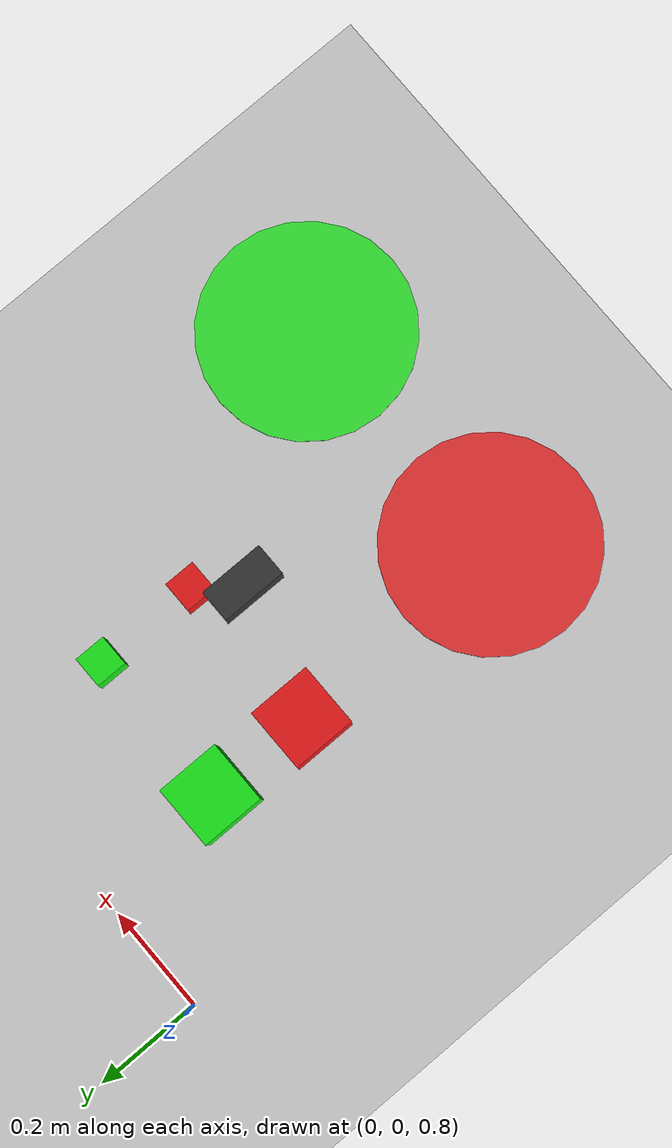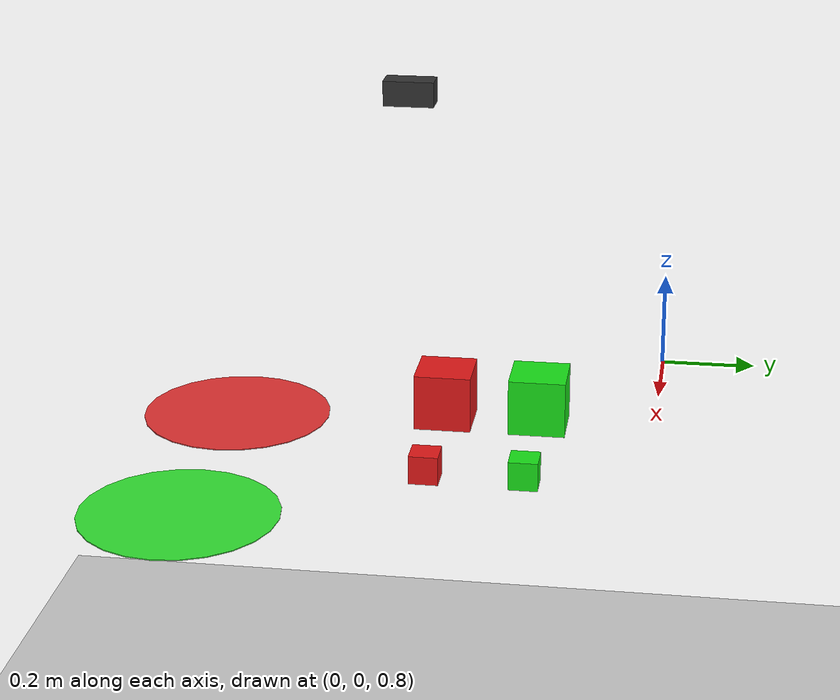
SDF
<sdf version="1.8">
 <world name="pick_place_world">
  <physics name="default_physics" type="ode">
   <max_step_size>0.001</max_step_size>
   <real_time_factor>1.0</real_time_factor>
   <real_time_update_rate>1000</real_time_update_rate>
  </physics>
  <plugin filename="gz-sim-physics-system" name="gz::sim::systems::Physics"/>
  <plugin filename="gz-sim-user-commands-system" name="gz::sim::systems::UserCommands"/>
  <plugin filename="gz-sim-scene-broadcaster-system" name="gz::sim::systems::SceneBroadcaster"/>
  <plugin filename="gz-sim-sensors-system" name="gz::sim::systems::Sensors">
   <render_engine>ogre2</render_engine>
  </plugin>
  <plugin filename="gz-sim-contact-system" name="gz::sim::systems::Contact"/>
  <scene><ambient>0.4 0.4 0.4 1</ambient><background>0.7 0.7 0.8 1</background><shadows>true</shadows></scene>
  <light type="directional" name="sun">
   <pose>0 0 10 0 0 0</pose>
   <diffuse>0.8 0.8 0.8 1</diffuse>
   <specular>0.2 0.2 0.2 1</specular>
   <direction>-0.5 0.1 -0.9</direction>
  </light>
  <model name="ground_plane">
   <static>true</static>
   <link name="link">
    <collision name="collision">
     <geometry><plane><normal>0 0 1</normal><size>10 10</size></plane></geometry>
    </collision>
    <visual name="visual">
     <geometry><plane><normal>0 0 1</normal><size>10 10</size></plane></geometry>
     <material><ambient>0.8 0.8 0.8 1</ambient><diffuse>0.8 0.8 0.8 1</diffuse></material>
    </visual>
   </link>
  </model>
  <include>
   <uri>model://big_green_cube</uri>
   <name>big_green_cube</name>
   <pose>0.25 -0.25 0.80 0 0 0</pose>
  </include>
  <include><uri>model://green_cube</uri><name>green_cube</name><pose>0.55 -0.25 0.77 0 0 0</pose></include>
  <include><uri>model://big_red_cube</uri><name>big_red_cube</name><pose>0.25 -0.45 0.80 0 0 0</pose></include>
  <include><uri>model://red_cube</uri><name>red_cube</name><pose>0.55 -0.45 0.77 0 0 0</pose></include>
  <model name="red_place_marker">
   <static>true</static>
   <pose>0.275 -0.90 0.741 0 0 0</pose>
   <link name="marker_link">
    <visual name="visual">
     <geometry><cylinder><radius>0.20</radius><length>0.002</length></cylinder></geometry>
     <material>
      <ambient>0.9 0.2 0.2 1</ambient>
      <diffuse>0.9 0.2 0.2 1</diffuse>
      <specular>0.3 0.1 0.1 1</specular>
     </material>
    </visual>
   </link>
  </model>
  <model name="green_place_marker">
   <static>true</static>
   <pose>0.775 -0.90 0.741 0 0 0</pose>
   <link name="marker_link">
    <visual name="visual">
     <geometry><cylinder><radius>0.20</radius><length>0.002</length></cylinder></geometry>
     <material>
      <ambient>0.2 0.9 0.2 1</ambient>
      <diffuse>0.2 0.9 0.2 1</diffuse>
      <specular>0.1 0.3 0.1 1</specular>
     </material>
    </visual>
   </link>
  </model>
  <model name="overhead_camera">
   <static>true</static>
   <pose>0.4 -0.5 1.5 0 1.5708 0</pose>
   <link name="camera_link">
    <visual name="camera_visual">
     <geometry><box><size>0.05 0.1 0.05</size></box></geometry>
     <material><ambient>0.1 0.1 0.1 1</ambient><diffuse>0.2 0.2 0.2 1</diffuse></material>
    </visual>
    <sensor name="rgbd_camera" type="rgbd_camera">
     <camera>
      <horizontal_fov>1.047</horizontal_fov>
      <image><width>640</width><height>480</height><format>R8G8B8</format></image>
      <clip><near>0.1</near><far>10.0</far></clip>
      <depth_camera><clip><near>0.1</near><far>10.0</far></clip></depth_camera>
     </camera>
     <always_on>1</always_on>
     <update_rate>10</update_rate>
     <visualize>true</visualize>
     <topic>camera</topic>
    </sensor>
   </link>
  </model>
 </world>
</sdf>

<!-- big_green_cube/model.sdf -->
<sdf version="1.8">
  <model name="big_green_cube">
    <static>false</static>
    <link name="link">
      <inertial>
        <!-- 12cm cube, 1.6kg (8x volume = 8x mass) -->
        <mass>1.6</mass>
        <inertia>
          <!-- I = (1/6) * m * s^2 for a cube = (1/6) * 1.6 * 0.12^2 = 0.00384 -->
          <ixx>0.00384</ixx>
          <iyy>0.00384</iyy>
          <izz>0.00384</izz>
          <ixy>0</ixy>
          <ixz>0</ixz>
          <iyz>0</iyz>
        </inertia>
      </inertial>
      <collision name="collision">
        <geometry>
          <box>
            <!-- 12cm cube - double the size of small cube -->
            <size>0.12 0.12 0.12</size>
          </box>
        </geometry>
        <surface>
          <friction>
            <ode>
              <mu>1.5</mu>
              <mu2>1.5</mu2>
            </ode>
          </friction>
          <contact>
            <ode>
              <kp>1e6</kp>
              <kd>100</kd>
              <max_vel>0.1</max_vel>
              <min_depth>0.001</min_depth>
            </ode>
          </contact>
        </surface>
      </collision>
      <visual name="visual">
        <geometry>
          <box>
            <size>0.12 0.12 0.12</size>
          </box>
        </geometry>
        <material>
          <ambient>0.1 0.8 0.1 1</ambient>
          <diffuse>0.1 0.9 0.1 1</diffuse>
          <specular>0.2 0.2 0.2 1</specular>
        </material>
      </visual>
    </link>
  </model>
</sdf>

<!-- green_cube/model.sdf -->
<sdf version="1.8">
  <model name="green_cube">
    <static>false</static>
    <link name="link">
      <inertial>
        <!-- 6cm cube, 0.2kg - heavier for better physics -->
        <mass>0.2</mass>
        <inertia>
          <!-- I = (1/6) * m * s^2 for a cube -->
          <ixx>0.00012</ixx>
          <iyy>0.00012</iyy>
          <izz>0.00012</izz>
          <ixy>0</ixy>
          <ixz>0</ixz>
          <iyz>0</iyz>
        </inertia>
      </inertial>
      <collision name="collision">
        <geometry>
          <box>
            <!-- 6cm cube - easier to grip with Robotiq 85 -->
            <size>0.06 0.06 0.06</size>
          </box>
        </geometry>
        <surface>
          <friction>
            <ode>
              <mu>2.0</mu>
              <mu2>2.0</mu2>
            </ode>
          </friction>
          <contact>
            <ode>
              <kp>1e6</kp>
              <kd>100</kd>
              <max_vel>0.05</max_vel>
              <min_depth>0.0005</min_depth>
            </ode>
          </contact>
        </surface>
      </collision>
      <visual name="visual">
        <geometry>
          <box>
            <size>0.06 0.06 0.06</size>
          </box>
        </geometry>
        <material>
          <ambient>0.1 0.8 0.1 1</ambient>
          <diffuse>0.1 0.9 0.1 1</diffuse>
          <specular>0.2 0.2 0.2 1</specular>
        </material>
      </visual>
    </link>
  </model>
</sdf>

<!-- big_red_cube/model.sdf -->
<sdf version="1.8">
  <model name="big_red_cube">
    <static>false</static>
    <link name="link">
      <inertial>
        <!-- 12cm cube, 1.6kg (8x volume = 8x mass) -->
        <mass>1.6</mass>
        <inertia>
          <!-- I = (1/6) * m * s^2 for a cube = (1/6) * 1.6 * 0.12^2 = 0.00384 -->
          <ixx>0.00384</ixx>
          <iyy>0.00384</iyy>
          <izz>0.00384</izz>
          <ixy>0</ixy>
          <ixz>0</ixz>
          <iyz>0</iyz>
        </inertia>
      </inertial>
      <collision name="collision">
        <geometry>
          <box>
            <!-- 12cm cube - double the size of small cube -->
            <size>0.12 0.12 0.12</size>
          </box>
        </geometry>
        <surface>
          <friction>
            <ode>
              <mu>2.0</mu>
              <mu2>2.0</mu2>
            </ode>
          </friction>
          <contact>
            <ode>
              <kp>1e6</kp>
              <kd>100</kd>
              <max_vel>0.05</max_vel>
              <min_depth>0.0005</min_depth>
            </ode>
          </contact>
        </surface>
      </collision>
      <visual name="visual">
        <geometry>
          <box>
            <size>0.12 0.12 0.12</size>
          </box>
        </geometry>
        <material>
          <ambient>0.8 0.1 0.1 1</ambient>
          <diffuse>0.9 0.1 0.1 1</diffuse>
          <specular>0.2 0.2 0.2 1</specular>
        </material>
      </visual>
    </link>
  </model>
</sdf>

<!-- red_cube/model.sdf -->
<sdf version="1.8">
  <model name="red_cube">
    <static>false</static>
    <link name="link">
      <inertial>
        <!-- 6cm cube, 0.2kg - heavier for better physics -->
        <mass>0.2</mass>
        <inertia>
          <!-- I = (1/6) * m * s^2 for a cube -->
          <ixx>0.00012</ixx>
          <iyy>0.00012</iyy>
          <izz>0.00012</izz>
          <ixy>0</ixy>
          <ixz>0</ixz>
          <iyz>0</iyz>
        </inertia>
      </inertial>
      <collision name="collision">
        <geometry>
          <box>
            <!-- 6cm cube - easier to grip with Robotiq 85 -->
            <size>0.06 0.06 0.06</size>
          </box>
        </geometry>
        <surface>
          <friction>
            <ode>
              <mu>2.0</mu>
              <mu2>2.0</mu2>
            </ode>
          </friction>
          <contact>
            <ode>
              <kp>1e6</kp>
              <kd>100</kd>
              <max_vel>0.05</max_vel>
              <min_depth>0.0005</min_depth>
            </ode>
          </contact>
        </surface>
      </collision>
      <visual name="visual">
        <geometry>
          <box>
            <size>0.06 0.06 0.06</size>
          </box>
        </geometry>
        <material>
          <ambient>0.8 0.1 0.1 1</ambient>
          <diffuse>0.9 0.1 0.1 1</diffuse>
          <specular>0.2 0.2 0.2 1</specular>
        </material>
      </visual>
    </link>
  </model>
</sdf>
